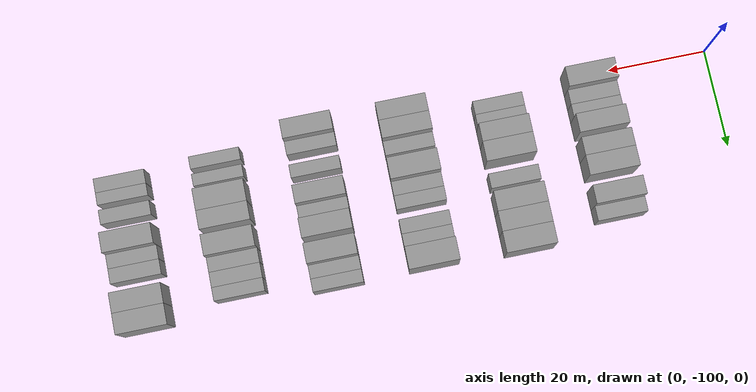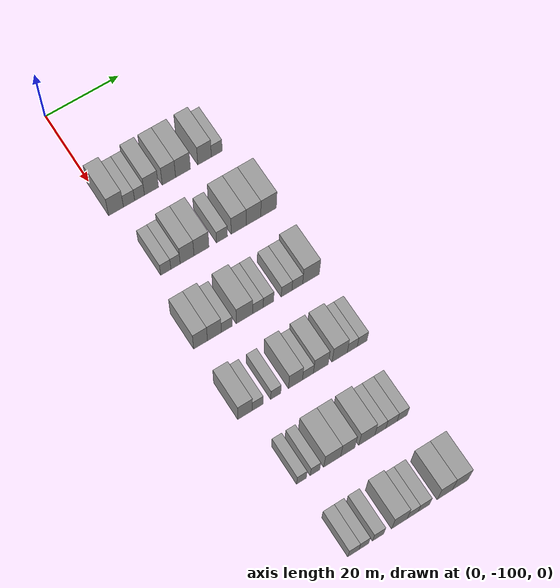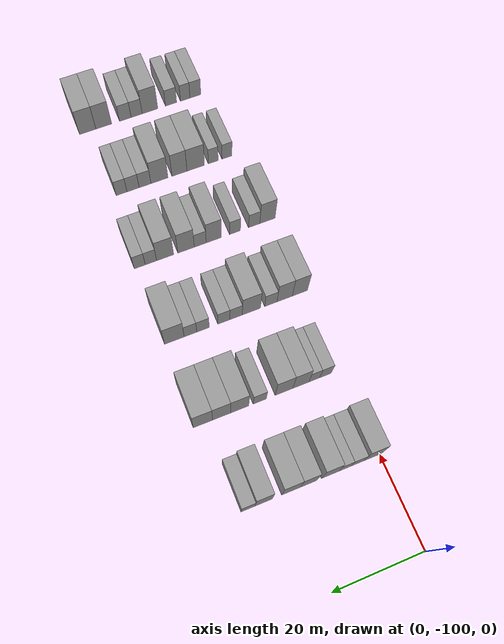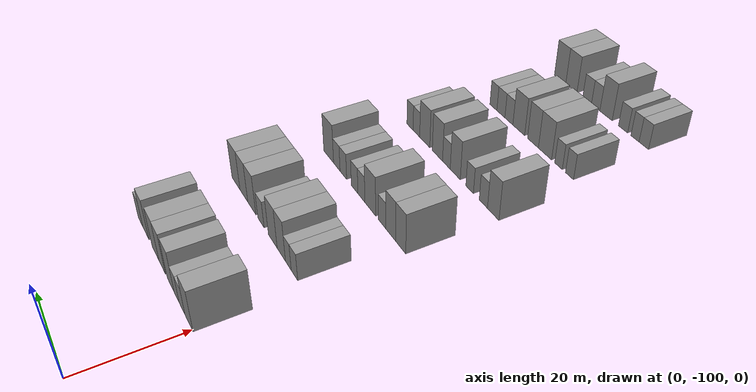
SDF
<sdf version="1.6">
 <world name="default">
  <model name="building_62">
   <static>1</static>
   <pose>25.0000 -98.4368 0 0.000000 0.000000 0.000000</pose>
   <link name="link">
    <pose>0 0 4.50 0 0 0</pose>
    <collision name="collision"><geometry><box><size>10.0000 4.0051 9.0000</size></box></geometry></collision>
    <visual name="visual">
     <cast_shadows>0</cast_shadows>
     <geometry><box><size>10.0000 4.0051 9.0000</size></box></geometry>
     <material>
      <script>
       <uri>model://grey_wall/materials/scripts</uri>
       <uri>model://grey_wall/materials/textures</uri>
       <name>vrc/grey_wall</name>
      </script>
     </material>
    </visual>
   </link>
  </model>
  <model name="building_63">
   <static>1</static>
   <pose>25.0000 -94.9402 0 0.000000 0.000000 0.000000</pose>
   <link name="link">
    <pose>0 0 3.00 0 0 0</pose>
    <collision name="collision"><geometry><box><size>10.0000 2.9882 6.0000</size></box></geometry></collision>
    <visual name="visual">
     <cast_shadows>0</cast_shadows>
     <geometry><box><size>10.0000 2.9882 6.0000</size></box></geometry>
     <material>
      <script>
       <uri>model://grey_wall/materials/scripts</uri>
       <uri>model://grey_wall/materials/textures</uri>
       <name>vrc/grey_wall</name>
      </script>
     </material>
    </visual>
   </link>
  </model>
  <model name="building_64">
   <static>1</static>
   <pose>25.0000 -92.1281 0 0.000000 0.000000 0.000000</pose>
   <link name="link">
    <pose>0 0 3.00 0 0 0</pose>
    <collision name="collision"><geometry><box><size>10.0000 2.6359 6.0000</size></box></geometry></collision>
    <visual name="visual">
     <cast_shadows>0</cast_shadows>
     <geometry><box><size>10.0000 2.6359 6.0000</size></box></geometry>
     <material>
      <script>
       <uri>model://grey_wall/materials/scripts</uri>
       <uri>model://grey_wall/materials/textures</uri>
       <name>vrc/grey_wall</name>
      </script>
     </material>
    </visual>
   </link>
  </model>
  <model name="building_65">
   <static>1</static>
   <pose>25.0000 -88.9158 0 0.000000 0.000000 0.000000</pose>
   <link name="link">
    <pose>0 0 4.50 0 0 0</pose>
    <collision name="collision"><geometry><box><size>10.0000 3.7887 9.0000</size></box></geometry></collision>
    <visual name="visual">
     <cast_shadows>0</cast_shadows>
     <geometry><box><size>10.0000 3.7887 9.0000</size></box></geometry>
     <material>
      <script>
       <uri>model://grey_wall/materials/scripts</uri>
       <uri>model://grey_wall/materials/textures</uri>
       <name>vrc/grey_wall</name>
      </script>
     </material>
    </visual>
   </link>
  </model>
  <model name="building_66">
   <static>1</static>
   <pose>25.0000 -84.2057 0 0.000000 0.000000 0.000000</pose>
   <link name="link">
    <pose>0 0 4.50 0 0 0</pose>
    <collision name="collision"><geometry><box><size>10.0000 3.6315 9.0000</size></box></geometry></collision>
    <visual name="visual">
     <cast_shadows>0</cast_shadows>
     <geometry><box><size>10.0000 3.6315 9.0000</size></box></geometry>
     <material>
      <script>
       <uri>model://grey_wall/materials/scripts</uri>
       <uri>model://grey_wall/materials/textures</uri>
       <name>vrc/grey_wall</name>
      </script>
     </material>
    </visual>
   </link>
  </model>
  <model name="building_67">
   <static>1</static>
   <pose>25.0000 -80.3737 0 0.000000 0.000000 0.000000</pose>
   <link name="link">
    <pose>0 0 4.50 0 0 0</pose>
    <collision name="collision"><geometry><box><size>10.0000 4.0326 9.0000</size></box></geometry></collision>
    <visual name="visual">
     <cast_shadows>0</cast_shadows>
     <geometry><box><size>10.0000 4.0326 9.0000</size></box></geometry>
     <material>
      <script>
       <uri>model://grey_wall/materials/scripts</uri>
       <uri>model://grey_wall/materials/textures</uri>
       <name>vrc/grey_wall</name>
      </script>
     </material>
    </visual>
   </link>
  </model>
  <model name="building_68">
   <static>1</static>
   <pose>25.0000 -74.5002 0 0.000000 0.000000 0.000000</pose>
   <link name="link">
    <pose>0 0 4.50 0 0 0</pose>
    <collision name="collision"><geometry><box><size>10.0000 3.7143 9.0000</size></box></geometry></collision>
    <visual name="visual">
     <cast_shadows>0</cast_shadows>
     <geometry><box><size>10.0000 3.7143 9.0000</size></box></geometry>
     <material>
      <script>
       <uri>model://grey_wall/materials/scripts</uri>
       <uri>model://grey_wall/materials/textures</uri>
       <name>vrc/grey_wall</name>
      </script>
     </material>
    </visual>
   </link>
  </model>
  <model name="building_69">
   <static>1</static>
   <pose>25.0000 -71.1474 0 0.000000 0.000000 0.000000</pose>
   <link name="link">
    <pose>0 0 3.00 0 0 0</pose>
    <collision name="collision"><geometry><box><size>10.0000 2.9913 6.0000</size></box></geometry></collision>
    <visual name="visual">
     <cast_shadows>0</cast_shadows>
     <geometry><box><size>10.0000 2.9913 6.0000</size></box></geometry>
     <material>
      <script>
       <uri>model://grey_wall/materials/scripts</uri>
       <uri>model://grey_wall/materials/textures</uri>
       <name>vrc/grey_wall</name>
      </script>
     </material>
    </visual>
   </link>
  </model>
  <model name="building_233">
   <static>1</static>
   <pose>44.0000 -96.5949 0 0.000000 0.000000 0.000000</pose>
   <link name="link">
    <pose>0 0 3.00 0 0 0</pose>
    <collision name="collision"><geometry><box><size>10.0000 2.7174 6.0000</size></box></geometry></collision>
    <visual name="visual">
     <cast_shadows>0</cast_shadows>
     <geometry><box><size>10.0000 2.7174 6.0000</size></box></geometry>
     <material>
      <script>
       <uri>model://grey_wall/materials/scripts</uri>
       <uri>model://grey_wall/materials/textures</uri>
       <name>vrc/grey_wall</name>
      </script>
     </material>
    </visual>
   </link>
  </model>
  <model name="building_234">
   <static>1</static>
   <pose>44.0000 -94.0045 0 0.000000 0.000000 0.000000</pose>
   <link name="link">
    <pose>0 0 3.00 0 0 0</pose>
    <collision name="collision"><geometry><box><size>10.0000 2.4634 6.0000</size></box></geometry></collision>
    <visual name="visual">
     <cast_shadows>0</cast_shadows>
     <geometry><box><size>10.0000 2.4634 6.0000</size></box></geometry>
     <material>
      <script>
       <uri>model://grey_wall/materials/scripts</uri>
       <uri>model://grey_wall/materials/textures</uri>
       <name>vrc/grey_wall</name>
      </script>
     </material>
    </visual>
   </link>
  </model>
  <model name="building_235">
   <static>1</static>
   <pose>44.0000 -90.9316 0 0.000000 0.000000 0.000000</pose>
   <link name="link">
    <pose>0 0 4.50 0 0 0</pose>
    <collision name="collision"><geometry><box><size>10.0000 3.6824 9.0000</size></box></geometry></collision>
    <visual name="visual">
     <cast_shadows>0</cast_shadows>
     <geometry><box><size>10.0000 3.6824 9.0000</size></box></geometry>
     <material>
      <script>
       <uri>model://grey_wall/materials/scripts</uri>
       <uri>model://grey_wall/materials/textures</uri>
       <name>vrc/grey_wall</name>
      </script>
     </material>
    </visual>
   </link>
  </model>
  <model name="building_236">
   <static>1</static>
   <pose>44.0000 -87.0834 0 0.000000 0.000000 0.000000</pose>
   <link name="link">
    <pose>0 0 4.50 0 0 0</pose>
    <collision name="collision"><geometry><box><size>10.0000 4.0140 9.0000</size></box></geometry></collision>
    <visual name="visual">
     <cast_shadows>0</cast_shadows>
     <geometry><box><size>10.0000 4.0140 9.0000</size></box></geometry>
     <material>
      <script>
       <uri>model://grey_wall/materials/scripts</uri>
       <uri>model://grey_wall/materials/textures</uri>
       <name>vrc/grey_wall</name>
      </script>
     </material>
    </visual>
   </link>
  </model>
  <model name="building_237">
   <static>1</static>
   <pose>44.0000 -81.5937 0 0.000000 0.000000 0.000000</pose>
   <link name="link">
    <pose>0 0 3.00 0 0 0</pose>
    <collision name="collision"><geometry><box><size>10.0000 2.9654 6.0000</size></box></geometry></collision>
    <visual name="visual">
     <cast_shadows>0</cast_shadows>
     <geometry><box><size>10.0000 2.9654 6.0000</size></box></geometry>
     <material>
      <script>
       <uri>model://grey_wall/materials/scripts</uri>
       <uri>model://grey_wall/materials/textures</uri>
       <name>vrc/grey_wall</name>
      </script>
     </material>
    </visual>
   </link>
  </model>
  <model name="building_238">
   <static>1</static>
   <pose>44.0000 -77.0973 0 0.000000 0.000000 0.000000</pose>
   <link name="link">
    <pose>0 0 4.50 0 0 0</pose>
    <collision name="collision"><geometry><box><size>10.0000 4.0274 9.0000</size></box></geometry></collision>
    <visual name="visual">
     <cast_shadows>0</cast_shadows>
     <geometry><box><size>10.0000 4.0274 9.0000</size></box></geometry>
     <material>
      <script>
       <uri>model://grey_wall/materials/scripts</uri>
       <uri>model://grey_wall/materials/textures</uri>
       <name>vrc/grey_wall</name>
      </script>
     </material>
    </visual>
   </link>
  </model>
  <model name="building_239">
   <static>1</static>
   <pose>44.0000 -73.0815 0 0.000000 0.000000 0.000000</pose>
   <link name="link">
    <pose>0 0 4.50 0 0 0</pose>
    <collision name="collision"><geometry><box><size>10.0000 4.0043 9.0000</size></box></geometry></collision>
    <visual name="visual">
     <cast_shadows>0</cast_shadows>
     <geometry><box><size>10.0000 4.0043 9.0000</size></box></geometry>
     <material>
      <script>
       <uri>model://grey_wall/materials/scripts</uri>
       <uri>model://grey_wall/materials/textures</uri>
       <name>vrc/grey_wall</name>
      </script>
     </material>
    </visual>
   </link>
  </model>
  <model name="building_240">
   <static>1</static>
   <pose>44.0000 -68.9531 0 0.000000 0.000000 0.000000</pose>
   <link name="link">
    <pose>0 0 4.50 0 0 0</pose>
    <collision name="collision"><geometry><box><size>10.0000 4.2524 9.0000</size></box></geometry></collision>
    <visual name="visual">
     <cast_shadows>0</cast_shadows>
     <geometry><box><size>10.0000 4.2524 9.0000</size></box></geometry>
     <material>
      <script>
       <uri>model://grey_wall/materials/scripts</uri>
       <uri>model://grey_wall/materials/textures</uri>
       <name>vrc/grey_wall</name>
      </script>
     </material>
    </visual>
   </link>
  </model>
  <model name="building_407">
   <static>1</static>
   <pose>63.0000 -99.1046 0 0.000000 0.000000 0.000000</pose>
   <link name="link">
    <pose>0 0 4.50 0 0 0</pose>
    <collision name="collision"><geometry><box><size>10.0000 3.6152 9.0000</size></box></geometry></collision>
    <visual name="visual">
     <cast_shadows>0</cast_shadows>
     <geometry><box><size>10.0000 3.6152 9.0000</size></box></geometry>
     <material>
      <script>
       <uri>model://grey_wall/materials/scripts</uri>
       <uri>model://grey_wall/materials/textures</uri>
       <name>vrc/grey_wall</name>
      </script>
     </material>
    </visual>
   </link>
  </model>
  <model name="building_408">
   <static>1</static>
   <pose>63.0000 -95.4636 0 0.000000 0.000000 0.000000</pose>
   <link name="link">
    <pose>0 0 4.50 0 0 0</pose>
    <collision name="collision"><geometry><box><size>10.0000 3.6668 9.0000</size></box></geometry></collision>
    <visual name="visual">
     <cast_shadows>0</cast_shadows>
     <geometry><box><size>10.0000 3.6668 9.0000</size></box></geometry>
     <material>
      <script>
       <uri>model://grey_wall/materials/scripts</uri>
       <uri>model://grey_wall/materials/textures</uri>
       <name>vrc/grey_wall</name>
      </script>
     </material>
    </visual>
   </link>
  </model>
  <model name="building_409">
   <static>1</static>
   <pose>63.0000 -92.1772 0 0.000000 0.000000 0.000000</pose>
   <link name="link">
    <pose>0 0 3.00 0 0 0</pose>
    <collision name="collision"><geometry><box><size>10.0000 2.9059 6.0000</size></box></geometry></collision>
    <visual name="visual">
     <cast_shadows>0</cast_shadows>
     <geometry><box><size>10.0000 2.9059 6.0000</size></box></geometry>
     <material>
      <script>
       <uri>model://grey_wall/materials/scripts</uri>
       <uri>model://grey_wall/materials/textures</uri>
       <name>vrc/grey_wall</name>
      </script>
     </material>
    </visual>
   </link>
  </model>
  <model name="building_410">
   <static>1</static>
   <pose>63.0000 -87.5691 0 0.000000 0.000000 0.000000</pose>
   <link name="link">
    <pose>0 0 4.50 0 0 0</pose>
    <collision name="collision"><geometry><box><size>10.0000 4.3103 9.0000</size></box></geometry></collision>
    <visual name="visual">
     <cast_shadows>0</cast_shadows>
     <geometry><box><size>10.0000 4.3103 9.0000</size></box></geometry>
     <material>
      <script>
       <uri>model://grey_wall/materials/scripts</uri>
       <uri>model://grey_wall/materials/textures</uri>
       <name>vrc/grey_wall</name>
      </script>
     </material>
    </visual>
   </link>
  </model>
  <model name="building_411">
   <static>1</static>
   <pose>63.0000 -83.9774 0 0.000000 0.000000 0.000000</pose>
   <link name="link">
    <pose>0 0 3.00 0 0 0</pose>
    <collision name="collision"><geometry><box><size>10.0000 2.8732 6.0000</size></box></geometry></collision>
    <visual name="visual">
     <cast_shadows>0</cast_shadows>
     <geometry><box><size>10.0000 2.8732 6.0000</size></box></geometry>
     <material>
      <script>
       <uri>model://grey_wall/materials/scripts</uri>
       <uri>model://grey_wall/materials/textures</uri>
       <name>vrc/grey_wall</name>
      </script>
     </material>
    </visual>
   </link>
  </model>
  <model name="building_412">
   <static>1</static>
   <pose>63.0000 -81.1457 0 0.000000 0.000000 0.000000</pose>
   <link name="link">
    <pose>0 0 3.00 0 0 0</pose>
    <collision name="collision"><geometry><box><size>10.0000 2.7901 6.0000</size></box></geometry></collision>
    <visual name="visual">
     <cast_shadows>0</cast_shadows>
     <geometry><box><size>10.0000 2.7901 6.0000</size></box></geometry>
     <material>
      <script>
       <uri>model://grey_wall/materials/scripts</uri>
       <uri>model://grey_wall/materials/textures</uri>
       <name>vrc/grey_wall</name>
      </script>
     </material>
    </visual>
   </link>
  </model>
  <model name="building_413">
   <static>1</static>
   <pose>63.0000 -76.3088 0 0.000000 0.000000 0.000000</pose>
   <link name="link">
    <pose>0 0 3.00 0 0 0</pose>
    <collision name="collision"><geometry><box><size>10.0000 2.8837 6.0000</size></box></geometry></collision>
    <visual name="visual">
     <cast_shadows>0</cast_shadows>
     <geometry><box><size>10.0000 2.8837 6.0000</size></box></geometry>
     <material>
      <script>
       <uri>model://grey_wall/materials/scripts</uri>
       <uri>model://grey_wall/materials/textures</uri>
       <name>vrc/grey_wall</name>
      </script>
     </material>
    </visual>
   </link>
  </model>
  <model name="building_414">
   <static>1</static>
   <pose>63.0000 -73.4299 0 0.000000 0.000000 0.000000</pose>
   <link name="link">
    <pose>0 0 3.00 0 0 0</pose>
    <collision name="collision"><geometry><box><size>10.0000 2.8741 6.0000</size></box></geometry></collision>
    <visual name="visual">
     <cast_shadows>0</cast_shadows>
     <geometry><box><size>10.0000 2.8741 6.0000</size></box></geometry>
     <material>
      <script>
       <uri>model://grey_wall/materials/scripts</uri>
       <uri>model://grey_wall/materials/textures</uri>
       <name>vrc/grey_wall</name>
      </script>
     </material>
    </visual>
   </link>
  </model>
  <model name="building_415">
   <static>1</static>
   <pose>63.0000 -69.7440 0 0.000000 0.000000 0.000000</pose>
   <link name="link">
    <pose>0 0 4.50 0 0 0</pose>
    <collision name="collision"><geometry><box><size>10.0000 4.4976 9.0000</size></box></geometry></collision>
    <visual name="visual">
     <cast_shadows>0</cast_shadows>
     <geometry><box><size>10.0000 4.4976 9.0000</size></box></geometry>
     <material>
      <script>
       <uri>model://grey_wall/materials/scripts</uri>
       <uri>model://grey_wall/materials/textures</uri>
       <name>vrc/grey_wall</name>
      </script>
     </material>
    </visual>
   </link>
  </model>
  <model name="building_584">
   <static>1</static>
   <pose>82.0000 -99.4051 0 0.000000 0.000000 0.000000</pose>
   <link name="link">
    <pose>0 0 4.50 0 0 0</pose>
    <collision name="collision"><geometry><box><size>10.0000 3.7798 9.0000</size></box></geometry></collision>
    <visual name="visual">
     <cast_shadows>0</cast_shadows>
     <geometry><box><size>10.0000 3.7798 9.0000</size></box></geometry>
     <material>
      <script>
       <uri>model://grey_wall/materials/scripts</uri>
       <uri>model://grey_wall/materials/textures</uri>
       <name>vrc/grey_wall</name>
      </script>
     </material>
    </visual>
   </link>
  </model>
  <model name="building_585">
   <static>1</static>
   <pose>82.0000 -96.1296 0 0.000000 0.000000 0.000000</pose>
   <link name="link">
    <pose>0 0 3.00 0 0 0</pose>
    <collision name="collision"><geometry><box><size>10.0000 2.7714 6.0000</size></box></geometry></collision>
    <visual name="visual">
     <cast_shadows>0</cast_shadows>
     <geometry><box><size>10.0000 2.7714 6.0000</size></box></geometry>
     <material>
      <script>
       <uri>model://grey_wall/materials/scripts</uri>
       <uri>model://grey_wall/materials/textures</uri>
       <name>vrc/grey_wall</name>
      </script>
     </material>
    </visual>
   </link>
  </model>
  <model name="building_586">
   <static>1</static>
   <pose>82.0000 -91.4164 0 0.000000 0.000000 0.000000</pose>
   <link name="link">
    <pose>0 0 3.00 0 0 0</pose>
    <collision name="collision"><geometry><box><size>10.0000 2.6551 6.0000</size></box></geometry></collision>
    <visual name="visual">
     <cast_shadows>0</cast_shadows>
     <geometry><box><size>10.0000 2.6551 6.0000</size></box></geometry>
     <material>
      <script>
       <uri>model://grey_wall/materials/scripts</uri>
       <uri>model://grey_wall/materials/textures</uri>
       <name>vrc/grey_wall</name>
      </script>
     </material>
    </visual>
   </link>
  </model>
  <model name="building_587">
   <static>1</static>
   <pose>82.0000 -86.2519 0 0.000000 0.000000 0.000000</pose>
   <link name="link">
    <pose>0 0 4.50 0 0 0</pose>
    <collision name="collision"><geometry><box><size>10.0000 3.6738 9.0000</size></box></geometry></collision>
    <visual name="visual">
     <cast_shadows>0</cast_shadows>
     <geometry><box><size>10.0000 3.6738 9.0000</size></box></geometry>
     <material>
      <script>
       <uri>model://grey_wall/materials/scripts</uri>
       <uri>model://grey_wall/materials/textures</uri>
       <name>vrc/grey_wall</name>
      </script>
     </material>
    </visual>
   </link>
  </model>
  <model name="building_588">
   <static>1</static>
   <pose>82.0000 -82.9739 0 0.000000 0.000000 0.000000</pose>
   <link name="link">
    <pose>0 0 3.00 0 0 0</pose>
    <collision name="collision"><geometry><box><size>10.0000 2.8821 6.0000</size></box></geometry></collision>
    <visual name="visual">
     <cast_shadows>0</cast_shadows>
     <geometry><box><size>10.0000 2.8821 6.0000</size></box></geometry>
     <material>
      <script>
       <uri>model://grey_wall/materials/scripts</uri>
       <uri>model://grey_wall/materials/textures</uri>
       <name>vrc/grey_wall</name>
      </script>
     </material>
    </visual>
   </link>
  </model>
  <model name="building_589">
   <static>1</static>
   <pose>82.0000 -79.5646 0 0.000000 0.000000 0.000000</pose>
   <link name="link">
    <pose>0 0 4.50 0 0 0</pose>
    <collision name="collision"><geometry><box><size>10.0000 3.9365 9.0000</size></box></geometry></collision>
    <visual name="visual">
     <cast_shadows>0</cast_shadows>
     <geometry><box><size>10.0000 3.9365 9.0000</size></box></geometry>
     <material>
      <script>
       <uri>model://grey_wall/materials/scripts</uri>
       <uri>model://grey_wall/materials/textures</uri>
       <name>vrc/grey_wall</name>
      </script>
     </material>
    </visual>
   </link>
  </model>
  <model name="building_590">
   <static>1</static>
   <pose>82.0000 -74.5738 0 0.000000 0.000000 0.000000</pose>
   <link name="link">
    <pose>0 0 4.50 0 0 0</pose>
    <collision name="collision"><geometry><box><size>10.0000 4.0450 9.0000</size></box></geometry></collision>
    <visual name="visual">
     <cast_shadows>0</cast_shadows>
     <geometry><box><size>10.0000 4.0450 9.0000</size></box></geometry>
     <material>
      <script>
       <uri>model://grey_wall/materials/scripts</uri>
       <uri>model://grey_wall/materials/textures</uri>
       <name>vrc/grey_wall</name>
      </script>
     </material>
    </visual>
   </link>
  </model>
  <model name="building_591">
   <static>1</static>
   <pose>82.0000 -71.2009 0 0.000000 0.000000 0.000000</pose>
   <link name="link">
    <pose>0 0 3.00 0 0 0</pose>
    <collision name="collision"><geometry><box><size>10.0000 2.7009 6.0000</size></box></geometry></collision>
    <visual name="visual">
     <cast_shadows>0</cast_shadows>
     <geometry><box><size>10.0000 2.7009 6.0000</size></box></geometry>
     <material>
      <script>
       <uri>model://grey_wall/materials/scripts</uri>
       <uri>model://grey_wall/materials/textures</uri>
       <name>vrc/grey_wall</name>
      </script>
     </material>
    </visual>
   </link>
  </model>
  <model name="building_592">
   <static>1</static>
   <pose>82.0000 -68.5526 0 0.000000 0.000000 0.000000</pose>
   <link name="link">
    <pose>0 0 3.00 0 0 0</pose>
    <collision name="collision"><geometry><box><size>10.0000 2.5957 6.0000</size></box></geometry></collision>
    <visual name="visual">
     <cast_shadows>0</cast_shadows>
     <geometry><box><size>10.0000 2.5957 6.0000</size></box></geometry>
     <material>
      <script>
       <uri>model://grey_wall/materials/scripts</uri>
       <uri>model://grey_wall/materials/textures</uri>
       <name>vrc/grey_wall</name>
      </script>
     </material>
    </visual>
   </link>
  </model>
  <model name="building_765">
   <static>1</static>
   <pose>101.0000 -97.0453 0 0.000000 0.000000 0.000000</pose>
   <link name="link">
    <pose>0 0 3.00 0 0 0</pose>
    <collision name="collision"><geometry><box><size>10.0000 2.5144 6.0000</size></box></geometry></collision>
    <visual name="visual">
     <cast_shadows>0</cast_shadows>
     <geometry><box><size>10.0000 2.5144 6.0000</size></box></geometry>
     <material>
      <script>
       <uri>model://grey_wall/materials/scripts</uri>
       <uri>model://grey_wall/materials/textures</uri>
       <name>vrc/grey_wall</name>
      </script>
     </material>
    </visual>
   </link>
  </model>
  <model name="building_766">
   <static>1</static>
   <pose>101.0000 -93.5566 0 0.000000 0.000000 0.000000</pose>
   <link name="link">
    <pose>0 0 3.00 0 0 0</pose>
    <collision name="collision"><geometry><box><size>10.0000 2.4629 6.0000</size></box></geometry></collision>
    <visual name="visual">
     <cast_shadows>0</cast_shadows>
     <geometry><box><size>10.0000 2.4629 6.0000</size></box></geometry>
     <material>
      <script>
       <uri>model://grey_wall/materials/scripts</uri>
       <uri>model://grey_wall/materials/textures</uri>
       <name>vrc/grey_wall</name>
      </script>
     </material>
    </visual>
   </link>
  </model>
  <model name="building_767">
   <static>1</static>
   <pose>101.0000 -89.1333 0 0.000000 0.000000 0.000000</pose>
   <link name="link">
    <pose>0 0 4.50 0 0 0</pose>
    <collision name="collision"><geometry><box><size>10.0000 4.3838 9.0000</size></box></geometry></collision>
    <visual name="visual">
     <cast_shadows>0</cast_shadows>
     <geometry><box><size>10.0000 4.3838 9.0000</size></box></geometry>
     <material>
      <script>
       <uri>model://grey_wall/materials/scripts</uri>
       <uri>model://grey_wall/materials/textures</uri>
       <name>vrc/grey_wall</name>
      </script>
     </material>
    </visual>
   </link>
  </model>
  <model name="building_768">
   <static>1</static>
   <pose>101.0000 -85.0721 0 0.000000 0.000000 0.000000</pose>
   <link name="link">
    <pose>0 0 4.50 0 0 0</pose>
    <collision name="collision"><geometry><box><size>10.0000 3.7385 9.0000</size></box></geometry></collision>
    <visual name="visual">
     <cast_shadows>0</cast_shadows>
     <geometry><box><size>10.0000 3.7385 9.0000</size></box></geometry>
     <material>
      <script>
       <uri>model://grey_wall/materials/scripts</uri>
       <uri>model://grey_wall/materials/textures</uri>
       <name>vrc/grey_wall</name>
      </script>
     </material>
    </visual>
   </link>
  </model>
  <model name="building_769">
   <static>1</static>
   <pose>101.0000 -80.1003 0 0.000000 0.000000 0.000000</pose>
   <link name="link">
    <pose>0 0 4.50 0 0 0</pose>
    <collision name="collision"><geometry><box><size>10.0000 4.2051 9.0000</size></box></geometry></collision>
    <visual name="visual">
     <cast_shadows>0</cast_shadows>
     <geometry><box><size>10.0000 4.2051 9.0000</size></box></geometry>
     <material>
      <script>
       <uri>model://grey_wall/materials/scripts</uri>
       <uri>model://grey_wall/materials/textures</uri>
       <name>vrc/grey_wall</name>
      </script>
     </material>
    </visual>
   </link>
  </model>
  <model name="building_770">
   <static>1</static>
   <pose>101.0000 -76.5368 0 0.000000 0.000000 0.000000</pose>
   <link name="link">
    <pose>0 0 3.00 0 0 0</pose>
    <collision name="collision"><geometry><box><size>10.0000 2.9220 6.0000</size></box></geometry></collision>
    <visual name="visual">
     <cast_shadows>0</cast_shadows>
     <geometry><box><size>10.0000 2.9220 6.0000</size></box></geometry>
     <material>
      <script>
       <uri>model://grey_wall/materials/scripts</uri>
       <uri>model://grey_wall/materials/textures</uri>
       <name>vrc/grey_wall</name>
      </script>
     </material>
    </visual>
   </link>
  </model>
  <model name="building_771">
   <static>1</static>
   <pose>101.0000 -73.5782 0 0.000000 0.000000 0.000000</pose>
   <link name="link">
    <pose>0 0 3.00 0 0 0</pose>
    <collision name="collision"><geometry><box><size>10.0000 2.9953 6.0000</size></box></geometry></collision>
    <visual name="visual">
     <cast_shadows>0</cast_shadows>
     <geometry><box><size>10.0000 2.9953 6.0000</size></box></geometry>
     <material>
      <script>
       <uri>model://grey_wall/materials/scripts</uri>
       <uri>model://grey_wall/materials/textures</uri>
       <name>vrc/grey_wall</name>
      </script>
     </material>
    </visual>
   </link>
  </model>
  <model name="building_772">
   <static>1</static>
   <pose>101.0000 -70.7513 0 0.000000 0.000000 0.000000</pose>
   <link name="link">
    <pose>0 0 3.00 0 0 0</pose>
    <collision name="collision"><geometry><box><size>10.0000 2.6585 6.0000</size></box></geometry></collision>
    <visual name="visual">
     <cast_shadows>0</cast_shadows>
     <geometry><box><size>10.0000 2.6585 6.0000</size></box></geometry>
     <material>
      <script>
       <uri>model://grey_wall/materials/scripts</uri>
       <uri>model://grey_wall/materials/textures</uri>
       <name>vrc/grey_wall</name>
      </script>
     </material>
    </visual>
   </link>
  </model>
  <model name="building_946">
   <static>1</static>
   <pose>120.0000 -96.2980 0 0.000000 0.000000 0.000000</pose>
   <link name="link">
    <pose>0 0 3.00 0 0 0</pose>
    <collision name="collision"><geometry><box><size>10.0000 2.8374 6.0000</size></box></geometry></collision>
    <visual name="visual">
     <cast_shadows>0</cast_shadows>
     <geometry><box><size>10.0000 2.8374 6.0000</size></box></geometry>
     <material>
      <script>
       <uri>model://grey_wall/materials/scripts</uri>
       <uri>model://grey_wall/materials/textures</uri>
       <name>vrc/grey_wall</name>
      </script>
     </material>
    </visual>
   </link>
  </model>
  <model name="building_947">
   <static>1</static>
   <pose>120.0000 -93.6369 0 0.000000 0.000000 0.000000</pose>
   <link name="link">
    <pose>0 0 3.00 0 0 0</pose>
    <collision name="collision"><geometry><box><size>10.0000 2.4848 6.0000</size></box></geometry></collision>
    <visual name="visual">
     <cast_shadows>0</cast_shadows>
     <geometry><box><size>10.0000 2.4848 6.0000</size></box></geometry>
     <material>
      <script>
       <uri>model://grey_wall/materials/scripts</uri>
       <uri>model://grey_wall/materials/textures</uri>
       <name>vrc/grey_wall</name>
      </script>
     </material>
    </visual>
   </link>
  </model>
  <model name="building_948">
   <static>1</static>
   <pose>120.0000 -89.9490 0 0.000000 0.000000 0.000000</pose>
   <link name="link">
    <pose>0 0 3.00 0 0 0</pose>
    <collision name="collision"><geometry><box><size>10.0000 2.8909 6.0000</size></box></geometry></collision>
    <visual name="visual">
     <cast_shadows>0</cast_shadows>
     <geometry><box><size>10.0000 2.8909 6.0000</size></box></geometry>
     <material>
      <script>
       <uri>model://grey_wall/materials/scripts</uri>
       <uri>model://grey_wall/materials/textures</uri>
       <name>vrc/grey_wall</name>
      </script>
     </material>
    </visual>
   </link>
  </model>
  <model name="building_949">
   <static>1</static>
   <pose>120.0000 -84.4951 0 0.000000 0.000000 0.000000</pose>
   <link name="link">
    <pose>0 0 4.50 0 0 0</pose>
    <collision name="collision"><geometry><box><size>10.0000 4.0169 9.0000</size></box></geometry></collision>
    <visual name="visual">
     <cast_shadows>0</cast_shadows>
     <geometry><box><size>10.0000 4.0169 9.0000</size></box></geometry>
     <material>
      <script>
       <uri>model://grey_wall/materials/scripts</uri>
       <uri>model://grey_wall/materials/textures</uri>
       <name>vrc/grey_wall</name>
      </script>
     </material>
    </visual>
   </link>
  </model>
  <model name="building_950">
   <static>1</static>
   <pose>120.0000 -81.0759 0 0.000000 0.000000 0.000000</pose>
   <link name="link">
    <pose>0 0 3.00 0 0 0</pose>
    <collision name="collision"><geometry><box><size>10.0000 2.8215 6.0000</size></box></geometry></collision>
    <visual name="visual">
     <cast_shadows>0</cast_shadows>
     <geometry><box><size>10.0000 2.8215 6.0000</size></box></geometry>
     <material>
      <script>
       <uri>model://grey_wall/materials/scripts</uri>
       <uri>model://grey_wall/materials/textures</uri>
       <name>vrc/grey_wall</name>
      </script>
     </material>
    </visual>
   </link>
  </model>
  <model name="building_951">
   <static>1</static>
   <pose>120.0000 -78.1724 0 0.000000 0.000000 0.000000</pose>
   <link name="link">
    <pose>0 0 3.00 0 0 0</pose>
    <collision name="collision"><geometry><box><size>10.0000 2.9854 6.0000</size></box></geometry></collision>
    <visual name="visual">
     <cast_shadows>0</cast_shadows>
     <geometry><box><size>10.0000 2.9854 6.0000</size></box></geometry>
     <material>
      <script>
       <uri>model://grey_wall/materials/scripts</uri>
       <uri>model://grey_wall/materials/textures</uri>
       <name>vrc/grey_wall</name>
      </script>
     </material>
    </visual>
   </link>
  </model>
  <model name="building_952">
   <static>1</static>
   <pose>120.0000 -72.6938 0 0.000000 0.000000 0.000000</pose>
   <link name="link">
    <pose>0 0 4.50 0 0 0</pose>
    <collision name="collision"><geometry><box><size>10.0000 3.9719 9.0000</size></box></geometry></collision>
    <visual name="visual">
     <cast_shadows>0</cast_shadows>
     <geometry><box><size>10.0000 3.9719 9.0000</size></box></geometry>
     <material>
      <script>
       <uri>model://grey_wall/materials/scripts</uri>
       <uri>model://grey_wall/materials/textures</uri>
       <name>vrc/grey_wall</name>
      </script>
     </material>
    </visual>
   </link>
  </model>
  <model name="building_953">
   <static>1</static>
   <pose>120.0000 -68.6450 0 0.000000 0.000000 0.000000</pose>
   <link name="link">
    <pose>0 0 4.50 0 0 0</pose>
    <collision name="collision"><geometry><box><size>10.0000 4.1257 9.0000</size></box></geometry></collision>
    <visual name="visual">
     <cast_shadows>0</cast_shadows>
     <geometry><box><size>10.0000 4.1257 9.0000</size></box></geometry>
     <material>
      <script>
       <uri>model://grey_wall/materials/scripts</uri>
       <uri>model://grey_wall/materials/textures</uri>
       <name>vrc/grey_wall</name>
      </script>
     </material>
    </visual>
   </link>
  </model>
 </world>
</sdf>
